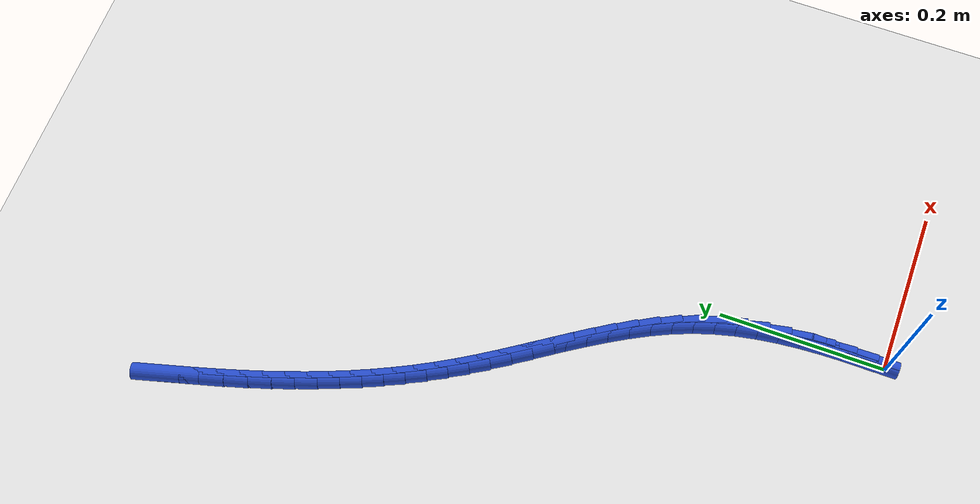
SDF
<sdf version="1.6">
 <world name="default">
  <model name="ground_plane">
   <static>1</static>
   <link name="link">
    <collision name="collision">
     <geometry><plane><normal>0 0 1</normal><size>100 100</size></plane></geometry>
     <surface><friction><ode><mu>100</mu><mu2>50</mu2></ode></friction></surface>
    </collision>
    <visual name="visual">
     <cast_shadows>0</cast_shadows>
     <geometry><plane><normal>0 0 1</normal><size>100 100</size></plane></geometry>
     <material>
      <script><uri>file://media/materials/scripts/gazebo.material</uri><name>Gazebo/WhiteGlow</name></script>
     </material>
    </visual>
   </link>
  </model>
  <model name="line">
   <link name="link_1">
    <pose>0.00042943801422285963 0.02601168983052005 0.01 0 1.57 -1.5676252205902421</pose>
    <collision name="collision">
     <geometry><cylinder><radius>0.01</radius><length>0.08</length></cylinder></geometry>
    </collision>
    <visual name="visual">
     <material>
      <script><name>Gazebo/Blue</name><uri>file://media/materials/scripts/gazebo.material</uri></script>
     </material>
     <geometry><cylinder><radius>0.01</radius><length>0.08</length></cylinder></geometry>
    </visual>
   </link>
   <link name="link_2">
    <pose>0.0003469676792073009 0.05201840586422096 0.01 0 1.57 -1.5421554651012233</pose>
    <collision name="collision">
     <geometry><cylinder><radius>0.01</radius><length>0.08</length></cylinder></geometry>
    </collision>
    <visual name="visual">
     <material>
      <script><name>Gazebo/Blue</name><uri>file://media/materials/scripts/gazebo.material</uri></script>
     </material>
     <geometry><cylinder><radius>0.01</radius><length>0.08</length></cylinder></geometry>
    </visual>
   </link>
   <link name="link_3">
    <pose>-0.0003959502156660262 0.07795040307326778 0.01 0 1.57 -1.5106883978143857</pose>
    <collision name="collision">
     <geometry><cylinder><radius>0.01</radius><length>0.08</length></cylinder></geometry>
    </collision>
    <visual name="visual">
     <material>
      <script><name>Gazebo/Blue</name><uri>file://media/materials/scripts/gazebo.material</uri></script>
     </material>
     <geometry><cylinder><radius>0.01</radius><length>0.08</length></cylinder></geometry>
    </visual>
   </link>
   <link name="link_4">
    <pose>-0.001947854881016481 0.10373793642982548 0.01 0 1.57 -1.4729825863999648</pose>
    <collision name="collision">
     <geometry><cylinder><radius>0.01</radius><length>0.08</length></cylinder></geometry>
    </collision>
    <visual name="visual">
     <material>
      <script><name>Gazebo/Blue</name><uri>file://media/materials/scripts/gazebo.material</uri></script>
     </material>
     <geometry><cylinder><radius>0.01</radius><length>0.08</length></cylinder></geometry>
    </visual>
   </link>
   <link name="link_5">
    <pose>-0.004457285527463422 0.1293112609060592 0.01 0 1.57 -1.4287935360095947</pose>
    <collision name="collision">
     <geometry><cylinder><radius>0.01</radius><length>0.08</length></cylinder></geometry>
    </collision>
    <visual name="visual">
     <material>
      <script><name>Gazebo/Blue</name><uri>file://media/materials/scripts/gazebo.material</uri></script>
     </material>
     <geometry><cylinder><radius>0.01</radius><length>0.08</length></cylinder></geometry>
    </visual>
   </link>
   <link name="link_6">
    <pose>-0.008072781365626213 0.15460063147413394 0.01 0 1.57 -1.3779177365567081</pose>
    <collision name="collision">
     <geometry><cylinder><radius>0.01</radius><length>0.08</length></cylinder></geometry>
    </collision>
    <visual name="visual">
     <material>
      <script><name>Gazebo/Blue</name><uri>file://media/materials/scripts/gazebo.material</uri></script>
     </material>
     <geometry><cylinder><radius>0.01</radius><length>0.08</length></cylinder></geometry>
    </visual>
   </link>
   <link name="link_7">
    <pose>-0.0129428816061242 0.17953630310621466 0.01 0 1.57 -1.3202508523883352</pose>
    <collision name="collision">
     <geometry><cylinder><radius>0.01</radius><length>0.08</length></cylinder></geometry>
    </collision>
    <visual name="visual">
     <material>
      <script><name>Gazebo/Blue</name><uri>file://media/materials/scripts/gazebo.material</uri></script>
     </material>
     <geometry><cylinder><radius>0.01</radius><length>0.08</length></cylinder></geometry>
    </visual>
   </link>
   <link name="link_8">
    <pose>-0.019216125459576763 0.20404853077446658 0.01 0 1.57 -1.2558921399591056</pose>
    <collision name="collision">
     <geometry><cylinder><radius>0.01</radius><length>0.08</length></cylinder></geometry>
    </collision>
    <visual name="visual">
     <material>
      <script><name>Gazebo/Blue</name><uri>file://media/materials/scripts/gazebo.material</uri></script>
     </material>
     <geometry><cylinder><radius>0.01</radius><length>0.08</length></cylinder></geometry>
    </visual>
   </link>
   <link name="link_9">
    <pose>-0.027040258992534816 0.22806784191022758 0.01 0 1.57 -1.1899303943734874</pose>
    <collision name="collision">
     <geometry><cylinder><radius>0.01</radius><length>0.08</length></cylinder></geometry>
    </collision>
    <visual name="visual">
     <material>
      <script><name>Gazebo/Blue</name><uri>file://media/materials/scripts/gazebo.material</uri></script>
     </material>
     <geometry><cylinder><radius>0.01</radius><length>0.08</length></cylinder></geometry>
    </visual>
   </link>
   <link name="link_10">
    <pose>-0.03644855814250048 0.2515640864814819 0.01 0 1.57 -1.132437126318749</pose>
    <collision name="collision">
     <geometry><cylinder><radius>0.01</radius><length>0.08</length></cylinder></geometry>
    </collision>
    <visual name="visual">
     <material>
      <script><name>Gazebo/Blue</name><uri>file://media/materials/scripts/gazebo.material</uri></script>
     </material>
     <geometry><cylinder><radius>0.01</radius><length>0.08</length></cylinder></geometry>
    </visual>
   </link>
   <link name="link_11">
    <pose>-0.04724126271522591 0.2745871665353603 0.01 0 1.57 -1.0846140605581969</pose>
    <collision name="collision">
     <geometry><cylinder><radius>0.01</radius><length>0.08</length></cylinder></geometry>
    </collision>
    <visual name="visual">
     <material>
      <script><name>Gazebo/Blue</name><uri>file://media/materials/scripts/gazebo.material</uri></script>
     </material>
     <geometry><cylinder><radius>0.01</radius><length>0.08</length></cylinder></geometry>
    </visual>
   </link>
   <link name="link_12">
    <pose>-0.05919027905459358 0.29719671716989504 0.01 0 1.57 -1.0462569999396019</pose>
    <collision name="collision">
     <geometry><cylinder><radius>0.01</radius><length>0.08</length></cylinder></geometry>
    </collision>
    <visual name="visual">
     <material>
      <script><name>Gazebo/Blue</name><uri>file://media/materials/scripts/gazebo.material</uri></script>
     </material>
     <geometry><cylinder><radius>0.01</radius><length>0.08</length></cylinder></geometry>
    </visual>
   </link>
   <link name="link_13">
    <pose>-0.07206751350448591 0.31945237348311806 0.01 0 1.57 -1.0170747300178373</pose>
    <collision name="collision">
     <geometry><cylinder><radius>0.01</radius><length>0.08</length></cylinder></geometry>
    </collision>
    <visual name="visual">
     <material>
      <script><name>Gazebo/Blue</name><uri>file://media/materials/scripts/gazebo.material</uri></script>
     </material>
     <geometry><cylinder><radius>0.01</radius><length>0.08</length></cylinder></geometry>
    </visual>
   </link>
   <link name="link_14">
    <pose>-0.08564487240878545 0.34141377057306155 0.01 0 1.57 -0.9967871219840205</pose>
    <collision name="collision">
     <geometry><cylinder><radius>0.01</radius><length>0.08</length></cylinder></geometry>
    </collision>
    <visual name="visual">
     <material>
      <script><name>Gazebo/Blue</name><uri>file://media/materials/scripts/gazebo.material</uri></script>
     </material>
     <geometry><cylinder><radius>0.01</radius><length>0.08</length></cylinder></geometry>
    </visual>
   </link>
   <link name="link_15">
    <pose>-0.09969426211137462 0.3631405435377575 0.01 0 1.57 -0.9851916437009793</pose>
    <collision name="collision">
     <geometry><cylinder><radius>0.01</radius><length>0.08</length></cylinder></geometry>
    </collision>
    <visual name="visual">
     <material>
      <script><name>Gazebo/Blue</name><uri>file://media/materials/scripts/gazebo.material</uri></script>
     </material>
     <geometry><cylinder><radius>0.01</radius><length>0.08</length></cylinder></geometry>
    </visual>
   </link>
   <link name="link_16">
    <pose>-0.11398758895613598 0.3846923274752379 0.01 0 1.57 -0.9822056207728629</pose>
    <collision name="collision">
     <geometry><cylinder><radius>0.01</radius><length>0.08</length></cylinder></geometry>
    </collision>
    <visual name="visual">
     <material>
      <script><name>Gazebo/Blue</name><uri>file://media/materials/scripts/gazebo.material</uri></script>
     </material>
     <geometry><cylinder><radius>0.01</radius><length>0.08</length></cylinder></geometry>
    </visual>
   </link>
   <link name="link_17">
    <pose>-0.12829675928695192 0.406128757483535 0.01 0 1.57 -0.9878909543283146</pose>
    <collision name="collision">
     <geometry><cylinder><radius>0.01</radius><length>0.08</length></cylinder></geometry>
    </collision>
    <visual name="visual">
     <material>
      <script><name>Gazebo/Blue</name><uri>file://media/materials/scripts/gazebo.material</uri></script>
     </material>
     <geometry><cylinder><radius>0.01</radius><length>0.08</length></cylinder></geometry>
    </visual>
   </link>
   <link name="link_18">
    <pose>-0.14239367944770492 0.4275094686606805 0.01 0 1.57 -1.002465223025756</pose>
    <collision name="collision">
     <geometry><cylinder><radius>0.01</radius><length>0.08</length></cylinder></geometry>
    </collision>
    <visual name="visual">
     <material>
      <script><name>Gazebo/Blue</name><uri>file://media/materials/scripts/gazebo.material</uri></script>
     </material>
     <geometry><cylinder><radius>0.01</radius><length>0.08</length></cylinder></geometry>
    </visual>
   </link>
   <link name="link_19">
    <pose>-0.15605025578227755 0.44889409610470676 0.01 0 1.57 -1.0260049977630974</pose>
    <collision name="collision">
     <geometry><cylinder><radius>0.01</radius><length>0.08</length></cylinder></geometry>
    </collision>
    <visual name="visual">
     <material>
      <script><name>Gazebo/Blue</name><uri>file://media/materials/scripts/gazebo.material</uri></script>
     </material>
     <geometry><cylinder><radius>0.01</radius><length>0.08</length></cylinder></geometry>
    </visual>
   </link>
   <link name="link_20">
    <pose>-0.1690470537799566 0.4703423249946574 0.01 0 1.57 -1.0538700743237543</pose>
    <collision name="collision">
     <geometry><cylinder><radius>0.01</radius><length>0.08</length></cylinder></geometry>
    </collision>
    <visual name="visual">
     <material>
      <script><name>Gazebo/Blue</name><uri>file://media/materials/scripts/gazebo.material</uri></script>
     </material>
     <geometry><cylinder><radius>0.01</radius><length>0.08</length></cylinder></geometry>
    </visual>
   </link>
   <link name="link_21">
    <pose>-0.18131067263318124 0.4919146851097357 0.01 0 1.57 -1.0817553757917213</pose>
    <collision name="collision">
     <geometry><cylinder><radius>0.01</radius><length>0.08</length></cylinder></geometry>
    </collision>
    <visual name="visual">
     <material>
      <script><name>Gazebo/Blue</name><uri>file://media/materials/scripts/gazebo.material</uri></script>
     </material>
     <geometry><cylinder><radius>0.01</radius><length>0.08</length></cylinder></geometry>
    </visual>
   </link>
   <link name="link_22">
    <pose>-0.19288919489797185 0.5136724088400216 0.01 0 1.57 -1.1092219240259398</pose>
    <collision name="collision">
     <geometry><cylinder><radius>0.01</radius><length>0.08</length></cylinder></geometry>
    </collision>
    <visual name="visual">
     <material>
      <script><name>Gazebo/Blue</name><uri>file://media/materials/scripts/gazebo.material</uri></script>
     </material>
     <geometry><cylinder><radius>0.01</radius><length>0.08</length></cylinder></geometry>
    </visual>
   </link>
   <link name="link_23">
    <pose>-0.20383440000390873 0.5356767499568241 0.01 0 1.57 -1.1359629359607926</pose>
    <collision name="collision">
     <geometry><cylinder><radius>0.01</radius><length>0.08</length></cylinder></geometry>
    </collision>
    <visual name="visual">
     <material>
      <script><name>Gazebo/Blue</name><uri>file://media/materials/scripts/gazebo.material</uri></script>
     </material>
     <geometry><cylinder><radius>0.01</radius><length>0.08</length></cylinder></geometry>
    </visual>
   </link>
   <link name="link_24">
    <pose>-0.21419806738057198 0.5579889622314522 0.01 0 1.57 -1.1616906846191994</pose>
    <collision name="collision">
     <geometry><cylinder><radius>0.01</radius><length>0.08</length></cylinder></geometry>
    </collision>
    <visual name="visual">
     <material>
      <script><name>Gazebo/Blue</name><uri>file://media/materials/scripts/gazebo.material</uri></script>
     </material>
     <geometry><cylinder><radius>0.01</radius><length>0.08</length></cylinder></geometry>
    </visual>
   </link>
   <link name="link_25">
    <pose>-0.22403197645754183 0.5806702994352146 0.01 0 1.57 -1.1861474441206268</pose>
    <collision name="collision">
     <geometry><cylinder><radius>0.01</radius><length>0.08</length></cylinder></geometry>
    </collision>
    <visual name="visual">
     <material>
      <script><name>Gazebo/Blue</name><uri>file://media/materials/scripts/gazebo.material</uri></script>
     </material>
     <geometry><cylinder><radius>0.01</radius><length>0.08</length></cylinder></geometry>
    </visual>
   </link>
   <link name="link_26">
    <pose>-0.23338790666439851 0.6037820153394203 0.01 0 1.57 -1.2091140020605664</pose>
    <collision name="collision">
     <geometry><cylinder><radius>0.01</radius><length>0.08</length></cylinder></geometry>
    </collision>
    <visual name="visual">
     <material>
      <script><name>Gazebo/Blue</name><uri>file://media/materials/scripts/gazebo.material</uri></script>
     </material>
     <geometry><cylinder><radius>0.01</radius><length>0.08</length></cylinder></geometry>
    </visual>
   </link>
   <link name="link_27">
    <pose>-0.24231763743072213 0.6273853637153779 0.01 0 1.57 -1.2304152098504588</pose>
    <collision name="collision">
     <geometry><cylinder><radius>0.01</radius><length>0.08</length></cylinder></geometry>
    </collision>
    <visual name="visual">
     <material>
      <script><name>Gazebo/Blue</name><uri>file://media/materials/scripts/gazebo.material</uri></script>
     </material>
     <geometry><cylinder><radius>0.01</radius><length>0.08</length></cylinder></geometry>
    </visual>
   </link>
   <link name="link_28">
    <pose>-0.2508729481860929 0.6515415983343966 0.01 0 1.57 -1.2499224475458777</pose>
    <collision name="collision">
     <geometry><cylinder><radius>0.01</radius><length>0.08</length></cylinder></geometry>
    </collision>
    <visual name="visual">
     <material>
      <script><name>Gazebo/Blue</name><uri>file://media/materials/scripts/gazebo.material</uri></script>
     </material>
     <geometry><cylinder><radius>0.01</radius><length>0.08</length></cylinder></geometry>
    </visual>
   </link>
   <link name="link_29">
    <pose>-0.25910561836009105 0.6763119729677851 0.01 0 1.57 -1.2675532408221235</pose>
    <collision name="collision">
     <geometry><cylinder><radius>0.01</radius><length>0.08</length></cylinder></geometry>
    </collision>
    <visual name="visual">
     <material>
      <script><name>Gazebo/Blue</name><uri>file://media/materials/scripts/gazebo.material</uri></script>
     </material>
     <geometry><cylinder><radius>0.01</radius><length>0.08</length></cylinder></geometry>
    </visual>
   </link>
   <link name="link_30">
    <pose>-0.26706742738229683 0.7017577413868525 0.01 0 1.57 -1.2832685271068334</pose>
    <collision name="collision">
     <geometry><cylinder><radius>0.01</radius><length>0.08</length></cylinder></geometry>
    </collision>
    <visual name="visual">
     <material>
      <script><name>Gazebo/Blue</name><uri>file://media/materials/scripts/gazebo.material</uri></script>
     </material>
     <geometry><cylinder><radius>0.01</radius><length>0.08</length></cylinder></geometry>
    </visual>
   </link>
   <link name="link_31">
    <pose>-0.27481015468229036 0.7279401573629074 0.01 0 1.57 -1.297068203597419</pose>
    <collision name="collision">
     <geometry><cylinder><radius>0.01</radius><length>0.08</length></cylinder></geometry>
    </collision>
    <visual name="visual">
     <material>
      <script><name>Gazebo/Blue</name><uri>file://media/materials/scripts/gazebo.material</uri></script>
     </material>
     <geometry><cylinder><radius>0.01</radius><length>0.08</length></cylinder></geometry>
    </visual>
   </link>
   <link name="link_32">
    <pose>-0.2823855796896517 0.7549204746672588 0.01 0 1.57 -1.3080062128567485</pose>
    <collision name="collision">
     <geometry><cylinder><radius>0.01</radius><length>0.08</length></cylinder></geometry>
    </collision>
    <visual name="visual">
     <material>
      <script><name>Gazebo/Blue</name><uri>file://media/materials/scripts/gazebo.material</uri></script>
     </material>
     <geometry><cylinder><radius>0.01</radius><length>0.08</length></cylinder></geometry>
    </visual>
   </link>
   <link name="link_33">
    <pose>-0.28986203081938255 0.7827128025194404 0.01 0 1.57 -1.308238558965699</pose>
    <collision name="collision">
     <geometry><cylinder><radius>0.01</radius><length>0.08</length></cylinder></geometry>
    </collision>
    <visual name="visual">
     <material>
      <script><name>Gazebo/Blue</name><uri>file://media/materials/scripts/gazebo.material</uri></script>
     </material>
     <geometry><cylinder><radius>0.01</radius><length>0.08</length></cylinder></geometry>
    </visual>
   </link>
   <link name="link_281">
    <pose>0.00046240504723513815 0.026019077830228804 0.01 0 1.57 1.565105374441956</pose>
    <collision name="collision">
     <geometry><cylinder><radius>0.01</radius><length>0.08</length></cylinder></geometry>
    </collision>
    <visual name="visual">
     <material>
      <script><name>Gazebo/Blue</name><uri>file://media/materials/scripts/gazebo.material</uri></script>
     </material>
     <geometry><cylinder><radius>0.01</radius><length>0.08</length></cylinder></geometry>
    </visual>
   </link>
   <link name="link_282">
    <pose>0.0006107039433055441 0.05207750986189105 0.01 0 1.57 1.5590700374066837</pose>
    <collision name="collision">
     <geometry><cylinder><radius>0.01</radius><length>0.08</length></cylinder></geometry>
    </collision>
    <visual name="visual">
     <material>
      <script><name>Gazebo/Blue</name><uri>file://media/materials/scripts/gazebo.material</uri></script>
     </material>
     <geometry><cylinder><radius>0.01</radius><length>0.08</length></cylinder></geometry>
    </visual>
   </link>
  </model>
 </world>
</sdf>
